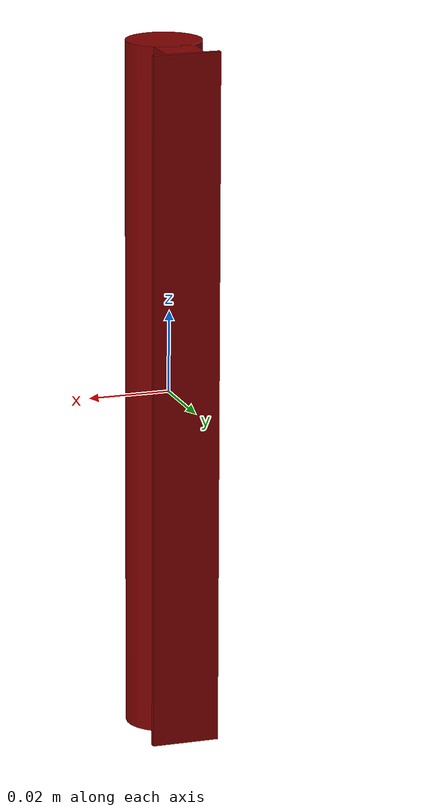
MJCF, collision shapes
<?xml version='1.0' encoding='UTF-8'?>
<mujoco model="model">
  <option timestep="0.002" gravity="0.0 0.0 -9.81"/>
  <compiler angle="radian"/>
  <asset>
    <mesh file="visuals/CabinetHandle012.obj" name="CabinetHandle012_vis"/>
    <texture file="visuals/T_BC001.png" name="tex" type="2d"/>
    <material name="mat" rgba="1 1 1 1.0" texture="tex" shininess="-1023.0" specular="0.3103448502657381"/>
  </asset>
  <default>
    <default class="visual">
      <geom conaffinity="0" contype="0" group="1" type="mesh"/>
    </default>
    <default class="collision">
      <geom group="0" rgba="0.5 0 0 0.5" density="1.0" solref="0.004 1" solimp="0.998 0.998 0.001"/>
    </default>
    <default class="spawn">
      <geom group="0" rgba="1 1 1 0.5" contype="0" conaffinity="0"/>
      <site group="0" rgba="1 1 1 0.5"/>
    </default>
    <default class="region">
      <geom group="1" conaffinity="0" contype="0" rgba="0 1 0 0" mass="0"/>
    </default>
  </default>
  <worldbody>
    <body>
      <body name="object">
        <geom mesh="CabinetHandle012_vis" type="mesh" solimp="0.998 0.998 0.001" solref="0.001 1" friction="0.95 0.3 0.1" class="visual" material="mat"/>
        <geom type="cylinder" pos="-8.311550482176244e-05 -0.004488236736506224 0.0" size="0.009223190136253834 0.08514194190502167" quat="1.0 0.0 0.0 0.0" class="collision"/>
        <geom type="box" pos="0.0 0.012675680220127106 0.0" size="0.008242110721766949 0.0006735118804499507 0.08514194190502167" quat="1.0 0.0 0.0 0.0" class="collision"/>
        <geom type="box" pos="0.00026095507200807333 0.007619604934006929 0.0" size="0.004693926777690649 0.004435770679265261 0.08514194190502167" quat="1.0 0.0 0.0 0.0" class="collision"/>
        <geom class="region" name="reg_main" type="box" pos="2.3283064365386963e-10 -2.3283064365386963e-09 0.0" size="0.010059137664735318 0.014349194079637528 0.08614194190502167"/>
      </body>
    </body>
  </worldbody>
  <actuator/>
</mujoco>
